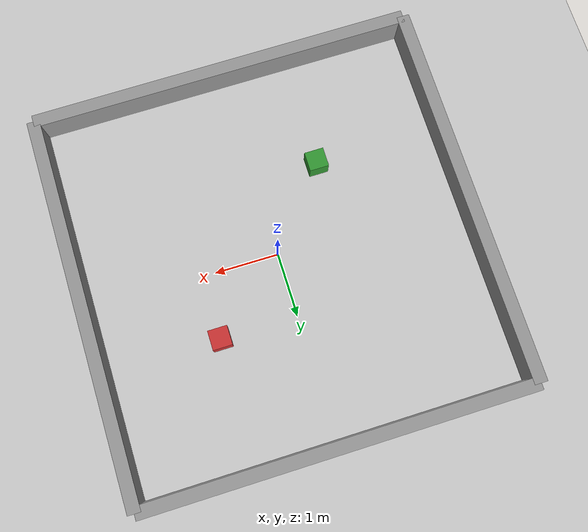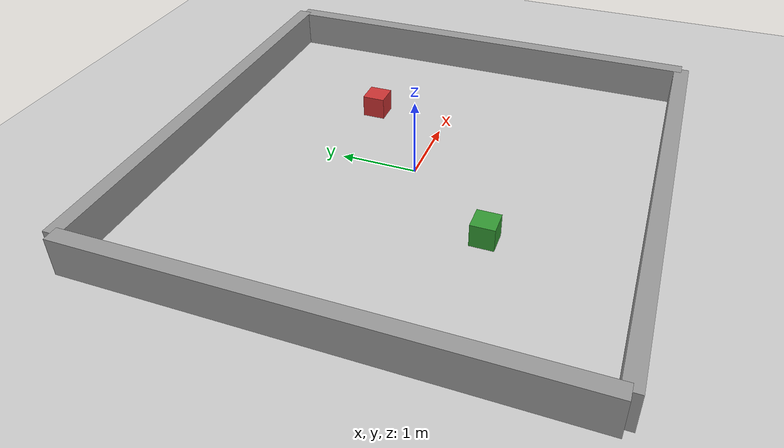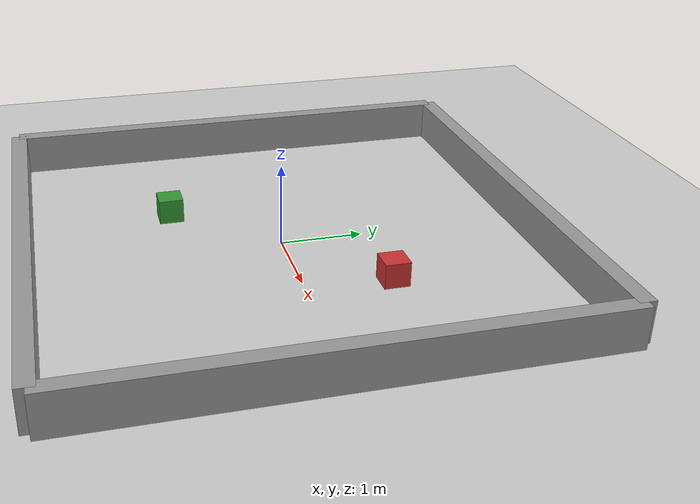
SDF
<?xml version="1.0"?>
<sdf version="1.6">
  <world name="default">

    <include>
      <uri>model://ground_plane</uri>
    </include>

    <include>
      <uri>model://sun</uri>
    </include>

    <model name="wall_north">
      <static>true</static>
      <pose>0 3 0.25 0 0 0</pose>
      <link name="link">
        <collision name="collision">
          <geometry><box><size>6 0.2 0.5</size></box></geometry>
        </collision>
        <visual name="visual">
          <geometry><box><size>6 0.2 0.5</size></box></geometry>
          <material><ambient>0.6 0.6 0.6 1</ambient></material>
        </visual>
      </link>
    </model>

    <model name="wall_south">
      <static>true</static>
      <pose>0 -3 0.25 0 0 0</pose>
      <link name="link">
        <collision name="collision">
          <geometry><box><size>6 0.2 0.5</size></box></geometry>
        </collision>
        <visual name="visual">
          <geometry><box><size>6 0.2 0.5</size></box></geometry>
          <material><ambient>0.6 0.6 0.6 1</ambient></material>
        </visual>
      </link>
    </model>

    <model name="wall_east">
      <static>true</static>
      <pose>3 0 0.25 0 0 1.5708</pose>
      <link name="link">
        <collision name="collision">
          <geometry><box><size>6 0.2 0.5</size></box></geometry>
        </collision>
        <visual name="visual">
          <geometry><box><size>6 0.2 0.5</size></box></geometry>
          <material><ambient>0.6 0.6 0.6 1</ambient></material>
        </visual>
      </link>
    </model>

    <model name="wall_west">
      <static>true</static>
      <pose>-3 0 0.25 0 0 1.5708</pose>
      <link name="link">
        <collision name="collision">
          <geometry><box><size>6 0.2 0.5</size></box></geometry>
        </collision>
        <visual name="visual">
          <geometry><box><size>6 0.2 0.5</size></box></geometry>
          <material><ambient>0.6 0.6 0.6 1</ambient></material>
        </visual>
      </link>
    </model>

    <model name="obstacle_1">
      <static>true</static>
      <pose>1.2 1.0 0.15 0 0 0</pose>
      <link name="link">
        <collision name="collision">
          <geometry><box><size>0.3 0.3 0.3</size></box></geometry>
        </collision>
        <visual name="visual">
          <geometry><box><size>0.3 0.3 0.3</size></box></geometry>
          <material><ambient>0.8 0.2 0.2 1</ambient></material>
        </visual>
      </link>
    </model>

    <model name="obstacle_2">
      <static>true</static>
      <pose>-1.0 -1.2 0.15 0 0 0</pose>
      <link name="link">
        <collision name="collision">
          <geometry><box><size>0.3 0.3 0.3</size></box></geometry>
        </collision>
        <visual name="visual">
          <geometry><box><size>0.3 0.3 0.3</size></box></geometry>
          <material><ambient>0.2 0.6 0.2 1</ambient></material>
        </visual>
      </link>
    </model>

  </world>
</sdf>
